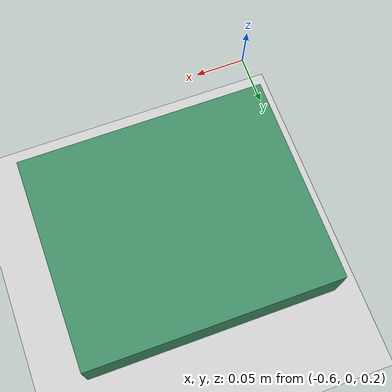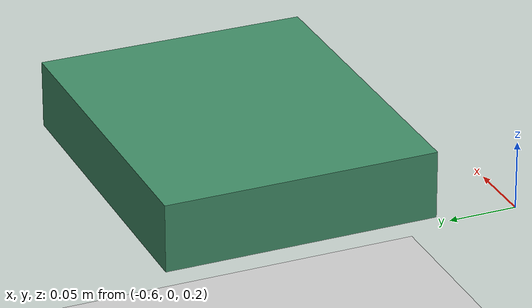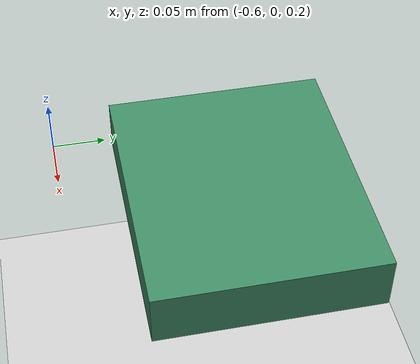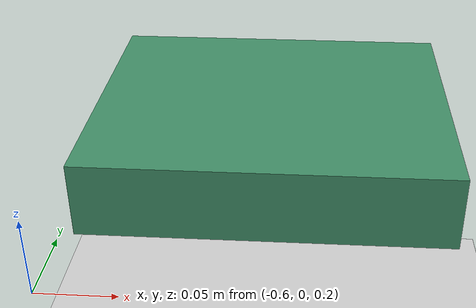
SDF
<?xml version="1.0"?>
<sdf version="1.6">
  <world name="massage_bed_contact_test">
    <physics name="1ms" type="ignored">
      <max_step_size>0.001</max_step_size>
      <real_time_factor>1.0</real_time_factor>
    </physics>
    <plugin filename="ignition-gazebo-physics-system" name="gz::sim::systems::Physics"/>
    <plugin filename="ignition-gazebo-user-commands-system" name="gz::sim::systems::UserCommands"/>
    <plugin filename="ignition-gazebo-scene-broadcaster-system" name="gz::sim::systems::SceneBroadcaster"/>
    <plugin filename="ignition-gazebo-contact-system" name="gz::sim::systems::Contact"/>
    <plugin filename="ignition-gazebo-forcetorque-system" name="ignition::gazebo::systems::ForceTorque"/>
    <plugin filename="ignition-gazebo-apply-link-wrench-system" name="gz::sim::systems::ApplyLinkWrench"/>

    <light type="directional" name="sun">
      <cast_shadows>true</cast_shadows>
      <pose>0 0 10 0 0 0</pose>
      <diffuse>0.8 0.8 0.8 1</diffuse>
      <specular>0.2 0.2 0.2 1</specular>
      <direction>-0.5 0.1 -0.9</direction>
    </light>

    <model name="ground_plane">
      <static>true</static>
      <link name="ground_link">
        <collision name="ground_collision">
          <geometry><plane><normal>0 0 1</normal><size>100 100</size></plane></geometry>
        </collision>
        <visual name="ground_visual">
          <geometry><plane><normal>0 0 1</normal><size>100 100</size></plane></geometry>
        </visual>
      </link>
    </model>

    <!-- 水平刚性测试面模拟仰卧患者表面的几何方向。本阶段用它获得确定性
         接触力，人体等效柔度由导纳参数承担；它不是人体材料模型。 -->
    <model name="massage_bed_pad">
      <static>true</static>
      <pose>-0.471238630 0.156275069 0.225 0 0 0</pose>
      <link name="pad_link">
        <collision name="pad_collision">
          <geometry><box><size>0.24 0.20 0.05</size></box></geometry>
          <surface><friction><ode><mu>0.6</mu><mu2>0.6</mu2></ode></friction></surface>
        </collision>
        <visual name="pad_visual">
          <geometry><box><size>0.24 0.20 0.05</size></box></geometry>
          <material><ambient>0.25 0.55 0.40 1</ambient><diffuse>0.25 0.55 0.40 1</diffuse></material>
        </visual>
      </link>
    </model>
  </world>
</sdf>
